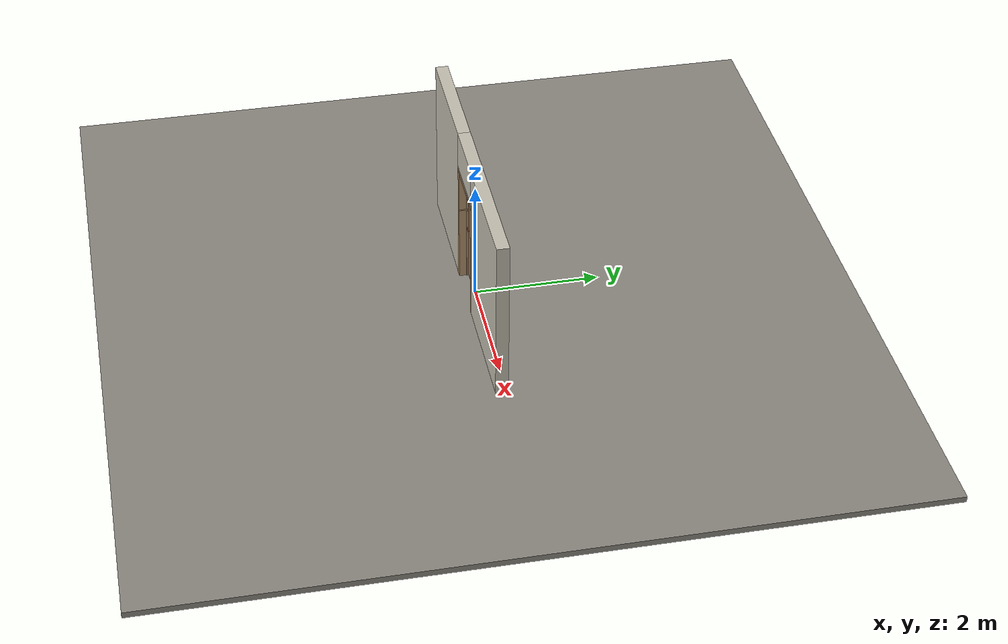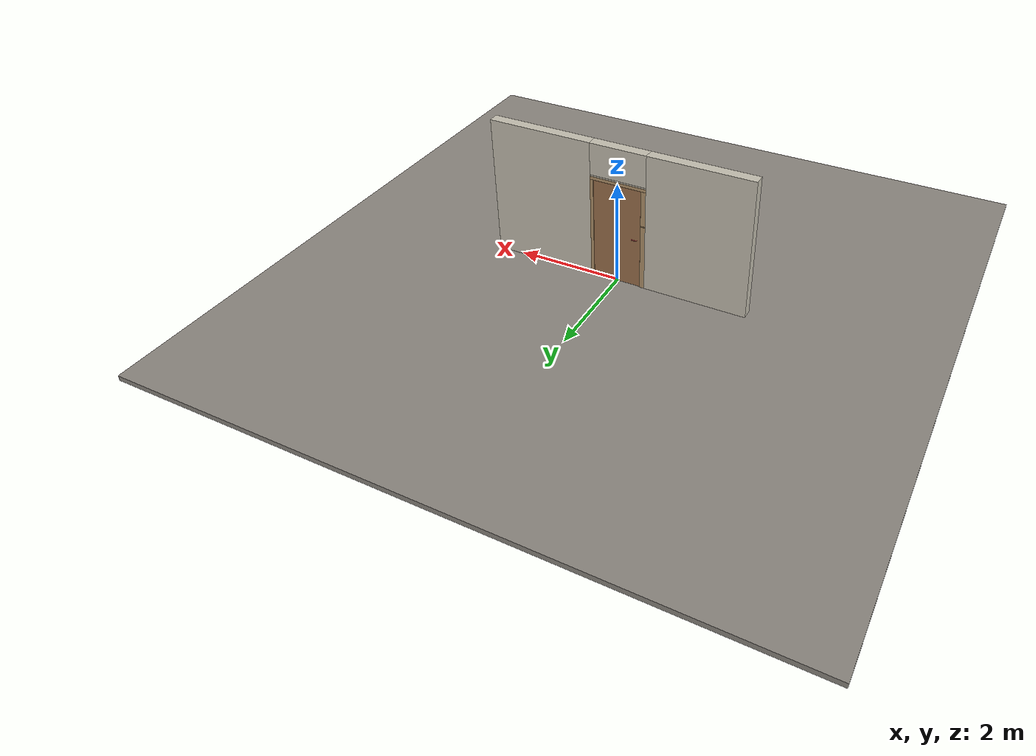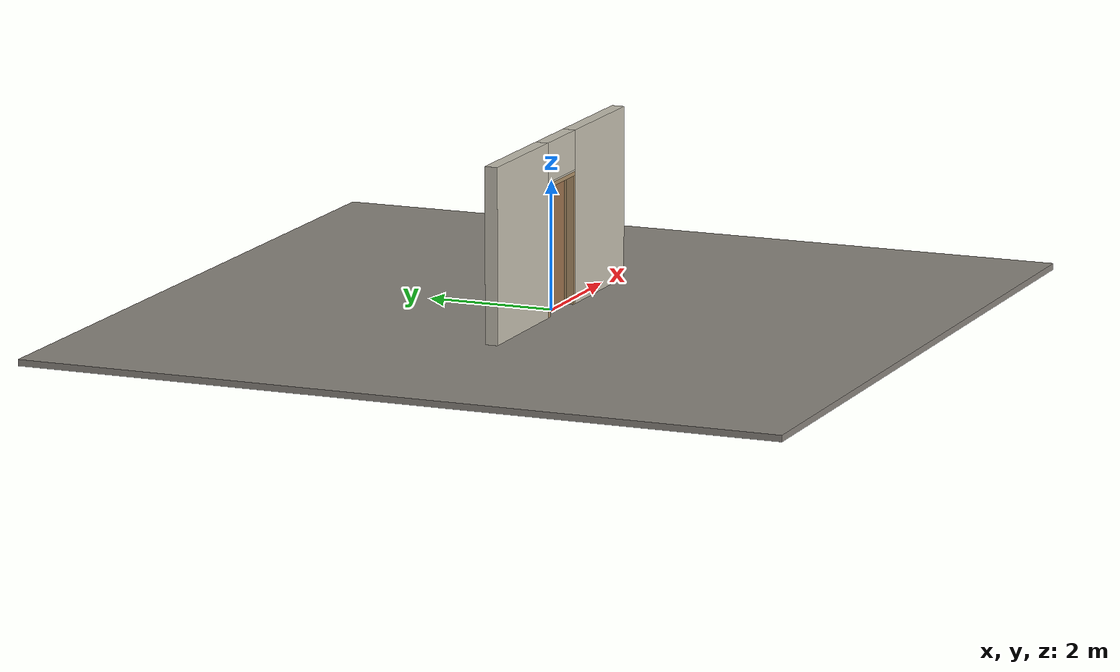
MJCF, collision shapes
<?xml version="1.0" ?>
<mujoco model="db0532_swing_single_minimal">
  <compiler angle="radian" meshdir="../../hardware" texturedir="../../textures" autolimits="true" inertiafromgeom="false"/>
  <option timestep="0.002" integrator="implicitfast" cone="elliptic" impratio="10" noslip_iterations="3">
    <flag multiccd="enable"/>
  </option>
  <size memory="16M"/>
  <default>
    <geom condim="4" solref="0.005 1" solimp="0.95 0.99 0.001"/>
    <joint solreflimit="0.005 1" solimplimit="0.95 0.99 0.001"/>
    <tendon solreflimit="0.005 1"/>
    <equality solref="0.002 1"/>
  </default>
  <visual>
    <headlight ambient="0.4 0.4 0.4" diffuse="0.7 0.7 0.7" specular="0.2 0.2 0.2"/>
    <quality shadowsize="4096"/>
    <map znear="0.01" zfar="60"/>
  </visual>
  <asset>
    <mesh name="ring_cc5c941a8a" file="ring_cc5c941a8a.obj"/>
    <material name="mat_floor" rgba="0.55 0.53 0.5 1" specular="0.2" shininess="0.15" reflectance="0"/>
    <material name="mat_wall" rgba="0.78 0.76 0.7 1" specular="0.2" shininess="0.1" reflectance="0"/>
    <material name="mat_leaf" rgba="0.62 0.45 0.3 1" specular="0.2" shininess="0.5" reflectance="0"/>
    <material name="mat_leaf_brace" rgba="0.558 0.405 0.27 1" specular="0.2" shininess="0.2" reflectance="0"/>
    <material name="mat_hinge" rgba="0.65 0.66 0.68 1" specular="0.74" shininess="0.5" reflectance="0.36"/>
    <material name="mat_op_wrought_iron" rgba="0.08 0.08 0.09 1" specular="0.56" shininess="0.25" reflectance="0.24"/>
    <material name="mat_op_brass" rgba="0.85 0.66 0.3 1" specular="0.8" shininess="0.75" reflectance="0.4"/>
    <material name="mat_frame" rgba="0.7 0.58 0.42 1" specular="0.2" shininess="0.5" reflectance="0"/>
    <material name="mat_numbers" rgba="0.05 0.05 0.05 1" specular="0.38" shininess="0.3" reflectance="0.12"/>
    <material name="mat_bumper_stop" rgba="0.08 0.08 0.08 1" specular="0.2" shininess="0.1" reflectance="0"/>
    <material name="mat_stop_base" rgba="0.9 0.9 0.92 1" specular="0.8" shininess="0.9" reflectance="0.4"/>
    <texture name="skybox" type="skybox" builtin="gradient" rgb1="0.6 0.7 0.85" rgb2="0.9 0.92 0.95" width="256" height="256"/>
  </asset>
  <worldbody>
    <light name="sun" pos="1.5 -2.5 4" dir="-0.3 0.5 -0.8" directional="true" diffuse="0.8 0.8 0.8" specular="0.3 0.3 0.3" castshadow="true"/>
    <light name="fill" pos="-1.5 2.5 3" dir="0.3 -0.5 -0.7" directional="true" diffuse="0.35 0.35 0.4" castshadow="false"/>
    <camera name="robot_view" pos="0 -2.569125 1.698475" xyaxes="1 0 0 0 0.26963 0.962964" fovy="52"/>
    <camera name="far_view" pos="0 2.427125 1.698475" xyaxes="-1 0 0 0 -0.26963 0.962964" fovy="52"/>
    <camera name="iso" pos="-1.898575 -2.169425 2.098175" xyaxes="0.741536 -0.670913 0 0.242917 0.268487 0.932151" fovy="46"/>
    <camera name="detail_handle" pos="-0.1715 -0.854 1.27" xyaxes="0.97561 0.219512 0 -0.070934 0.315262 0.94635" fovy="38"/>
    <geom name="floor" type="box" size="6 6 0.05" pos="0 0 -0.05" material="mat_floor" group="0" contype="1" conaffinity="1" friction="0.8 0.005 0.0001" density="2400"/>
    <geom name="wall_left" type="box" size="0.97475 0.1 1.35" pos="-1.52525 -0.071 1.35" material="mat_wall" group="0" contype="1" conaffinity="1" friction="0.6 0.005 0.0001" density="800"/>
    <geom name="wall_right" type="box" size="0.98975 0.1 1.35" pos="1.51025 -0.071 1.35" material="mat_wall" group="0" contype="1" conaffinity="1" friction="0.6 0.005 0.0001" density="800"/>
    <geom name="wall_header" type="box" size="0.5355 0.1 0.306" pos="-0.015 -0.071 2.394" material="mat_wall" group="0" contype="1" conaffinity="1" friction="0.6 0.005 0.0001" density="800"/>
    <geom name="jamb_hinge" type="box" size="0.03 0.1 0.999" pos="0.4905 -0.071 0.999" material="mat_frame" group="0" contype="1" conaffinity="1" friction="0.6 0.005 0.0001" density="750"/>
    <geom name="strike_1300_wall_n" type="box" size="0.045 0.0645 0.01" pos="-0.5055 -0.1065 1.3" material="mat_frame" group="0" contype="1" conaffinity="1" friction="0.6 0.005 0.0001" density="750"/>
    <geom name="strike_1300_wall_p" type="box" size="0.045 0.0275 0.01" pos="-0.5055 0.0015 1.3" material="mat_frame" group="0" contype="1" conaffinity="1" friction="0.6 0.005 0.0001" density="750"/>
    <geom name="strike_1300_back" type="box" size="0.024 0.008 0.01" pos="-0.5265 -0.034 1.3" material="mat_frame" group="0" contype="1" conaffinity="1" friction="0.6 0.005 0.0001" density="750"/>
    <geom name="jamb_strike_0" type="box" size="0.045 0.1 0.645" pos="-0.5055 -0.071 0.645" material="mat_frame" group="0" contype="1" conaffinity="1" friction="0.6 0.005 0.0001" density="750"/>
    <geom name="jamb_strike_1" type="box" size="0.045 0.1 0.344" pos="-0.5055 -0.071 1.654" material="mat_frame" group="0" contype="1" conaffinity="1" friction="0.6 0.005 0.0001" density="750"/>
    <geom name="jamb_head" type="box" size="0.5355 0.1 0.03" pos="-0.015 -0.071 2.028" material="mat_frame" group="0" contype="1" conaffinity="1" friction="0.6 0.005 0.0001" density="750"/>
    <geom name="head_stud" type="box" size="0.5355 0.1 0.015" pos="-0.015 -0.071 2.073" material="mat_wall" group="0" contype="1" conaffinity="1" friction="0.6 0.005 0.0001" density="500"/>
    <geom name="stop_hinge" type="box" size="0.0055 0.016 0.999" pos="0.455 -0.0385 0.999" material="mat_frame" group="0" contype="1" conaffinity="1" friction="0.6 0.005 0.0001" density="750"/>
    <geom name="stop_strike" type="box" size="0.0055 0.016 0.639" pos="-0.455 -0.0385 0.639" material="mat_frame" group="0" contype="1" conaffinity="1" friction="0.6 0.005 0.0001" density="750"/>
    <geom name="stop_strike_1" type="box" size="0.0055 0.016 0.338" pos="-0.455 -0.0385 1.66" material="mat_frame" group="0" contype="1" conaffinity="1" friction="0.6 0.005 0.0001" density="750"/>
    <geom name="stop_head" type="box" size="0.4605 0.016 0.0055" pos="0 -0.0385 1.9925" material="mat_frame" group="0" contype="1" conaffinity="1" friction="0.6 0.005 0.0001" density="750"/>
    <site name="approach_point" pos="0 -1.5 0" quat="1 0 0 0" size="0.05" rgba="0.2 0.9 0.2 0.5" group="4"/>
    <site name="goal_point" pos="0 1.5 0" quat="1 0 0 0" size="0.05" rgba="0.2 0.9 0.2 0.5" group="4"/>
    <site name="door_plane_center" pos="0 0 0.999" quat="1 0 0 0" size="0.02" rgba="0.2 0.9 0.2 0.5" group="4"/>
    <body name="leaf" pos="0.4605 0 0">
      <inertial pos="-0.464278 0 1.001948" mass="57.138348" quat="0.50014 0.500166 0.49986 -0.499834" diaginertia="4.026476419 18.547155561 22.551109818"/>
      <joint name="leaf_hinge" type="hinge" axis="0 0 -1" pos="-0.003 0.029 0" limited="true" range="0 1.570796" damping="0.300186" frictionloss="7.882315" armature="0.02"/>
      <geom name="leaf_slab" type="box" size="0.457 0.022 0.9925" pos="-0.46 0 1.0015" material="mat_leaf" group="0" contype="1" conaffinity="1" friction="0.4 0.005 0.0001" density="1"/>
      <geom name="leaf_ring_pull_n" type="mesh" mesh="ring_cc5c941a8a" pos="-0.812 -0.022 1.05" quat="0 0 -0.707107 0.707107" material="mat_op_wrought_iron" group="1" contype="0" conaffinity="0" density="3000"/>
      <geom name="leaf_ring_pull_col_n" type="capsule" size="0.008 0.05" pos="-0.812 -0.054 0.99" quat="0.707107 0 0.707107 0" material="mat_op_wrought_iron" group="3" contype="1" conaffinity="1" rgba="0.8 0.3 0.3 0.25" friction="0.7 0.01 0.0001" density="3000"/>
      <geom name="leaf_ring_pull_p" type="mesh" mesh="ring_cc5c941a8a" pos="-0.812 0.022 1.05" quat="0 0 0.707107 0.707107" material="mat_op_wrought_iron" group="1" contype="0" conaffinity="0" density="3000"/>
      <geom name="leaf_ring_pull_col_p" type="capsule" size="0.008 0.05" pos="-0.812 0.054 0.99" quat="0.707107 0 0.707107 0" material="mat_op_wrought_iron" group="3" contype="1" conaffinity="1" rgba="0.8 0.3 0.3 0.25" friction="0.7 0.01 0.0001" density="3000"/>
      <site name="leaf_ring_pull_grip_n" pos="-0.812 -0.054 0.99" quat="1 0 0 0" size="0.012" rgba="0.2 0.9 0.2 0.5" group="4"/>
      <site name="leaf_ring_pull_grip_p" pos="-0.812 0.054 0.99" quat="1 0 0 0" size="0.012" rgba="0.2 0.9 0.2 0.5" group="4"/>
      <site name="leaf_edge_mid" pos="-0.917 0 0.9925" quat="1 0 0 0" size="0.02" rgba="0.2 0.9 0.2 0.5" group="4"/>
    </body>
  </worldbody>
  <sensor>
    <jointpos name="leaf_hinge_pos" joint="leaf_hinge"/>
    <jointvel name="leaf_hinge_vel" joint="leaf_hinge"/>
  </sensor>
</mujoco>
